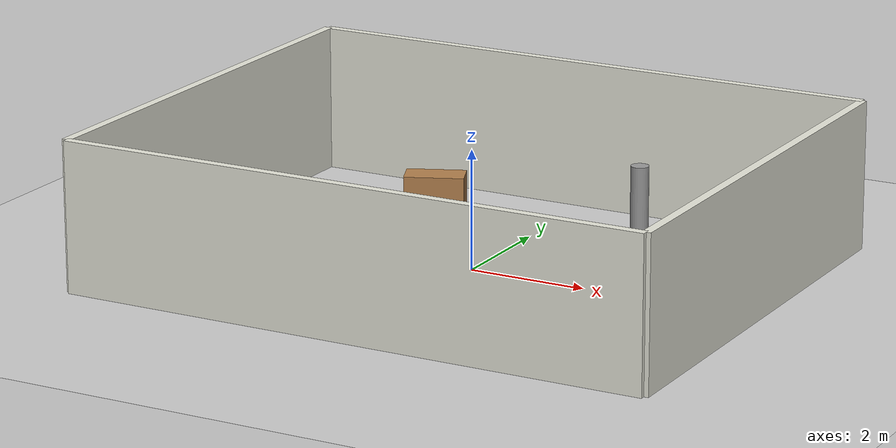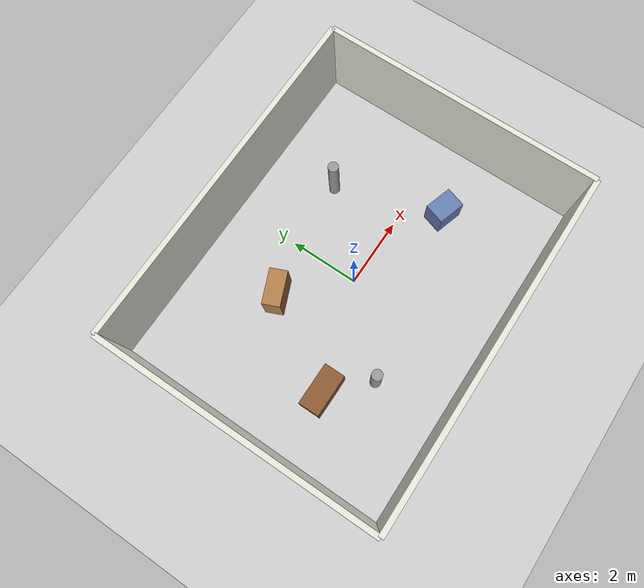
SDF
<?xml version="1.0" ?>
<sdf version="1.9">
  <world name="indoor_world">

    <!-- Physics -->
    <physics name="1ms" type="ignored">
      <max_step_size>0.001</max_step_size>
      <real_time_factor>1.0</real_time_factor>
    </physics>

    <!-- Required system plugins -->
    <plugin filename="gz-sim-physics-system"
            name="gz::sim::systems::Physics"/>
    <plugin filename="gz-sim-user-commands-system"
            name="gz::sim::systems::UserCommands"/>
    <plugin filename="gz-sim-scene-broadcaster-system"
            name="gz::sim::systems::SceneBroadcaster"/>
    <plugin filename="gz-sim-contact-system"
            name="gz::sim::systems::Contact"/>
    <plugin filename="gz-sim-sensors-system"
            name="gz::sim::systems::Sensors">
      <render_engine>ogre2</render_engine>
    </plugin>
    <plugin filename="gz-sim-imu-system"
            name="gz::sim::systems::Imu"/>

    <!-- Lighting -->
    <light type="directional" name="sun">
      <cast_shadows>true</cast_shadows>
      <pose>0 0 10 0 0 0</pose>
      <diffuse>0.8 0.8 0.8 1</diffuse>
      <specular>0.2 0.2 0.2 1</specular>
      <attenuation>
        <range>1000</range>
        <constant>0.9</constant>
        <linear>0.01</linear>
        <quadratic>0.001</quadratic>
      </attenuation>
      <direction>-0.5 0.1 -0.9</direction>
    </light>

    <!-- Ground plane -->
    <model name="ground_plane">
      <static>true</static>
      <link name="link">
        <collision name="collision">
          <geometry>
            <plane>
              <normal>0 0 1</normal>
              <size>50 50</size>
            </plane>
          </geometry>
        </collision>
        <visual name="visual">
          <geometry>
            <plane>
              <normal>0 0 1</normal>
              <size>50 50</size>
            </plane>
          </geometry>
          <material>
            <ambient>0.8 0.8 0.8 1</ambient>
            <diffuse>0.8 0.8 0.8 1</diffuse>
          </material>
        </visual>
      </link>
    </model>

    <!-- ==================== INDOOR ROOM ==================== -->
    <!-- Simple room: 10m x 8m with walls -->

    <!-- Wall South (front) -->
    <model name="wall_south">
      <static>true</static>
      <pose>5 0 1.25 0 0 0</pose>
      <link name="link">
        <collision name="collision">
          <geometry><box><size>0.15 8.0 2.5</size></box></geometry>
        </collision>
        <visual name="visual">
          <geometry><box><size>0.15 8.0 2.5</size></box></geometry>
          <material>
            <ambient>0.9 0.9 0.85 1</ambient>
            <diffuse>0.9 0.9 0.85 1</diffuse>
          </material>
        </visual>
      </link>
    </model>

    <!-- Wall North (back) -->
    <model name="wall_north">
      <static>true</static>
      <pose>-5 0 1.25 0 0 0</pose>
      <link name="link">
        <collision name="collision">
          <geometry><box><size>0.15 8.0 2.5</size></box></geometry>
        </collision>
        <visual name="visual">
          <geometry><box><size>0.15 8.0 2.5</size></box></geometry>
          <material>
            <ambient>0.9 0.9 0.85 1</ambient>
            <diffuse>0.9 0.9 0.85 1</diffuse>
          </material>
        </visual>
      </link>
    </model>

    <!-- Wall East (right) -->
    <model name="wall_east">
      <static>true</static>
      <pose>0 -4 1.25 0 0 0</pose>
      <link name="link">
        <collision name="collision">
          <geometry><box><size>10.0 0.15 2.5</size></box></geometry>
        </collision>
        <visual name="visual">
          <geometry><box><size>10.0 0.15 2.5</size></box></geometry>
          <material>
            <ambient>0.9 0.9 0.85 1</ambient>
            <diffuse>0.9 0.9 0.85 1</diffuse>
          </material>
        </visual>
      </link>
    </model>

    <!-- Wall West (left) -->
    <model name="wall_west">
      <static>true</static>
      <pose>0 4 1.25 0 0 0</pose>
      <link name="link">
        <collision name="collision">
          <geometry><box><size>10.0 0.15 2.5</size></box></geometry>
        </collision>
        <visual name="visual">
          <geometry><box><size>10.0 0.15 2.5</size></box></geometry>
          <material>
            <ambient>0.9 0.9 0.85 1</ambient>
            <diffuse>0.9 0.9 0.85 1</diffuse>
          </material>
        </visual>
      </link>
    </model>

    <!-- ==================== OBSTACLES ==================== -->

    <!-- Pillar 1 -->
    <model name="pillar_1">
      <static>true</static>
      <pose>2 2 0.75 0 0 0</pose>
      <link name="link">
        <collision name="collision">
          <geometry><cylinder><radius>0.15</radius><length>1.5</length></cylinder></geometry>
        </collision>
        <visual name="visual">
          <geometry><cylinder><radius>0.15</radius><length>1.5</length></cylinder></geometry>
          <material>
            <ambient>0.6 0.6 0.6 1</ambient>
            <diffuse>0.6 0.6 0.6 1</diffuse>
          </material>
        </visual>
      </link>
    </model>

    <!-- Pillar 2 -->
    <model name="pillar_2">
      <static>true</static>
      <pose>-2 -2 0.75 0 0 0</pose>
      <link name="link">
        <collision name="collision">
          <geometry><cylinder><radius>0.15</radius><length>1.5</length></cylinder></geometry>
        </collision>
        <visual name="visual">
          <geometry><cylinder><radius>0.15</radius><length>1.5</length></cylinder></geometry>
          <material>
            <ambient>0.6 0.6 0.6 1</ambient>
            <diffuse>0.6 0.6 0.6 1</diffuse>
          </material>
        </visual>
      </link>
    </model>

    <!-- Box obstacle 1 -->
    <model name="box_1">
      <static>true</static>
      <pose>-1.5 1.5 0.5 0 0 0.4</pose>
      <link name="link">
        <collision name="collision">
          <geometry><box><size>1.0 0.5 1.0</size></box></geometry>
        </collision>
        <visual name="visual">
          <geometry><box><size>1.0 0.5 1.0</size></box></geometry>
          <material>
            <ambient>0.7 0.5 0.3 1</ambient>
            <diffuse>0.7 0.5 0.3 1</diffuse>
          </material>
        </visual>
      </link>
    </model>

    <!-- Box obstacle 2 -->
    <model name="box_2">
      <static>true</static>
      <pose>3 -1 0.4 0 0 -0.3</pose>
      <link name="link">
        <collision name="collision">
          <geometry><box><size>0.8 0.6 0.8</size></box></geometry>
        </collision>
        <visual name="visual">
          <geometry><box><size>0.8 0.6 0.8</size></box></geometry>
          <material>
            <ambient>0.4 0.5 0.7 1</ambient>
            <diffuse>0.4 0.5 0.7 1</diffuse>
          </material>
        </visual>
      </link>
    </model>

    <!-- Table -->
    <model name="table">
      <static>true</static>
      <pose>-3 -1 0.4 0 0 0</pose>
      <link name="link">
        <collision name="collision">
          <geometry><box><size>1.2 0.6 0.8</size></box></geometry>
        </collision>
        <visual name="visual">
          <geometry><box><size>1.2 0.6 0.8</size></box></geometry>
          <material>
            <ambient>0.55 0.35 0.2 1</ambient>
            <diffuse>0.55 0.35 0.2 1</diffuse>
          </material>
        </visual>
      </link>
    </model>

  </world>
</sdf>
